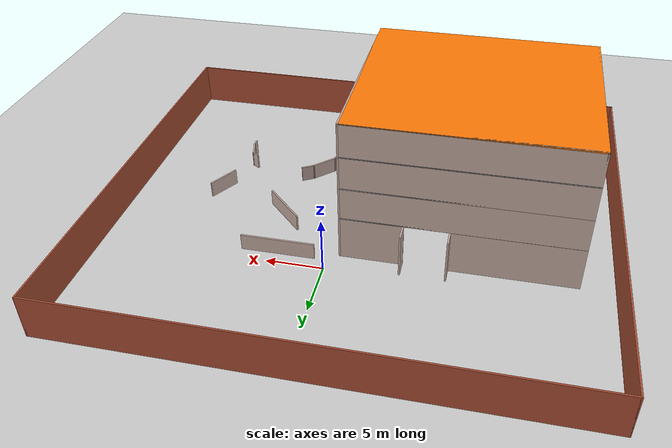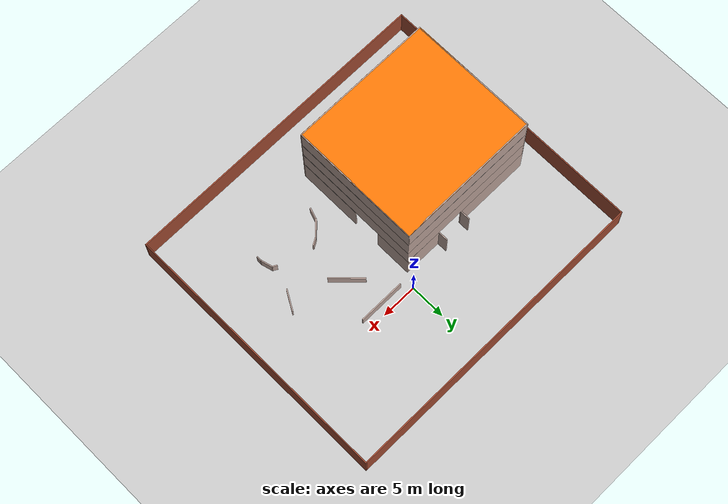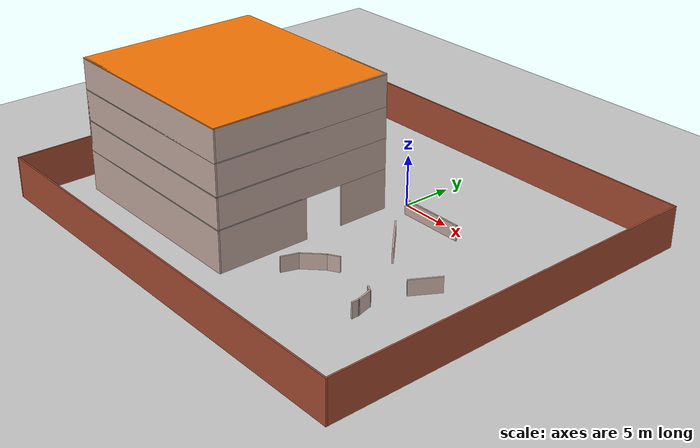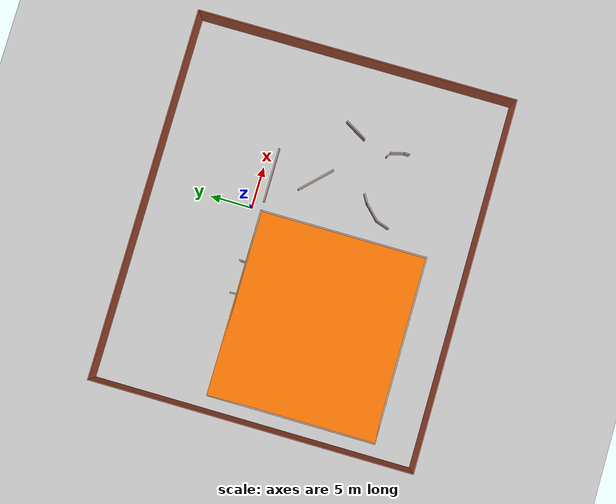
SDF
<sdf version="1.6">
 <world name="default">
  <model name="ground_plane">
   <static>1</static>
   <link name="link">
    <collision name="collision">
     <geometry><plane><normal>0 0 1</normal><size>100 100</size></plane></geometry>
     <surface><friction><ode><mu>100</mu><mu2>50</mu2></ode></friction></surface>
    </collision>
    <visual name="visual">
     <cast_shadows>0</cast_shadows>
     <geometry><plane><normal>0 0 1</normal><size>100 100</size></plane></geometry>
     <material>
      <script><uri>file://media/materials/scripts/gazebo.material</uri><name>Gazebo/Grey</name></script>
     </material>
    </visual>
   </link>
  </model>
  <model name="building2">
   <pose>-11 -10.325 0 0 -0 0</pose>
   <link name="Floor_0">
    <collision name="Floor_0_Collision">
     <geometry><box><size>20.15 18.15 0.1</size></box></geometry>
     <pose>0 0 0.05 0 -0 0</pose>
    </collision>
    <visual name="Floor_0_Visual">
     <pose>0 0 0.05 0 -0 0</pose>
     <geometry><box><size>20.15 18.15 0.1</size></box></geometry>
     <material>
      <script><uri>file://media/materials/scripts/gazebo.material</uri><name>Gazebo/Grey</name></script>
      <ambient>1 1 1 1</ambient>
     </material>
     <meta><layer>1</layer></meta>
    </visual>
    <pose>-0 -0.675 4 0 -0 0</pose>
   </link>
   <link name="Floor_2">
    <collision name="Floor_2_Collision">
     <geometry><box><size>20.15 18.15 0.1</size></box></geometry>
     <pose>0 0 0.05 0 -0 0</pose>
    </collision>
    <visual name="Floor_2_Visual">
     <pose>0 0 0.05 0 -0 0</pose>
     <geometry><box><size>20.15 18.15 0.1</size></box></geometry>
     <material>
      <script><uri>file://media/materials/scripts/gazebo.material</uri><name>Gazebo/Grey</name></script>
      <ambient>1 1 1 1</ambient>
     </material>
     <meta><layer>2</layer></meta>
    </visual>
    <pose>-0 -0.675 7 0 -0 0</pose>
   </link>
   <link name="Floor_3">
    <collision name="Floor_3_Collision">
     <geometry><box><size>20.15 18.15 0.1</size></box></geometry>
     <pose>0 0 0.05 0 -0 0</pose>
    </collision>
    <visual name="Floor_3_Visual">
     <pose>0 0 0.05 0 -0 0</pose>
     <geometry><box><size>20.15 18.15 0.1</size></box></geometry>
     <material>
      <script><uri>file://media/materials/scripts/gazebo.material</uri><name>Gazebo/Grey</name></script>
      <ambient>1 1 1 1</ambient>
     </material>
     <meta><layer>3</layer></meta>
    </visual>
    <pose>-0 -0.675 10 0 -0 0</pose>
   </link>
   <link name="Floor_8">
    <collision name="Floor_8_Collision">
     <geometry><box><size>20.15 18.15 0.1</size></box></geometry>
     <pose>0 0 0.05 0 -0 0</pose>
    </collision>
    <visual name="Floor_8_Visual">
     <pose>0 0 0.05 0 -0 0</pose>
     <geometry><box><size>20.15 18.15 0.1</size></box></geometry>
     <material>
      <script><uri>file://media/materials/scripts/gazebo.material</uri><name>Gazebo/Grey</name></script>
      <ambient>0.996078 0.47451 0.0196078 1</ambient>
     </material>
     <meta><layer>4</layer></meta>
    </visual>
    <pose>-0 -0.675 13 0 -0 0</pose>
   </link>
   <link name="Wall_11">
    <collision name="Wall_11_Collision">
     <geometry><box><size>1.5 0.15 4</size></box></geometry>
     <pose>0 0 2 0 -0 0</pose>
    </collision>
    <visual name="Wall_11_Visual">
     <pose>0 0 2 0 -0 0</pose>
     <geometry><box><size>1.5 0.15 4</size></box></geometry>
     <material>
      <script><uri>file://media/materials/scripts/gazebo.material</uri><name>Gazebo/Grey</name></script>
      <ambient>0.760784 0.662745 0.627451 1</ambient>
     </material>
     <meta><layer>0</layer></meta>
    </visual>
    <pose>0.8 9 0 0 -0 -1.5708</pose>
   </link>
   <link name="Wall_12">
    <collision name="Wall_12_Collision">
     <geometry><box><size>10.95 0.15 4</size></box></geometry>
     <pose>0 0 2 0 -0 0</pose>
    </collision>
    <visual name="Wall_12_Visual">
     <pose>0 0 2 0 -0 0</pose>
     <geometry><box><size>10.95 0.15 4</size></box></geometry>
     <material>
      <script><uri>file://media/materials/scripts/gazebo.material</uri><name>Gazebo/Grey</name></script>
      <ambient>0.760784 0.662745 0.627451 1</ambient>
     </material>
     <meta><layer>0</layer></meta>
    </visual>
    <pose>-4.6 8.325 0 0 -0 3.14159</pose>
   </link>
   <link name="Wall_14">
    <collision name="Wall_14_Collision">
     <geometry><box><size>18.15 0.15 4</size></box></geometry>
     <pose>0 0 2 0 -0 0</pose>
    </collision>
    <visual name="Wall_14_Visual">
     <pose>0 0 2 0 -0 0</pose>
     <geometry><box><size>18.15 0.15 4</size></box></geometry>
     <material>
      <script><uri>file://media/materials/scripts/gazebo.material</uri><name>Gazebo/Grey</name></script>
      <ambient>0.760784 0.662745 0.627451 1</ambient>
     </material>
     <meta><layer>0</layer></meta>
    </visual>
    <pose>-10 -0.675 0 0 -0 -1.5708</pose>
   </link>
   <link name="Wall_16">
    <collision name="Wall_16_Collision">
     <geometry><box><size>20.15 0.15 4</size></box></geometry>
     <pose>0 0 2 0 -0 0</pose>
    </collision>
    <visual name="Wall_16_Visual">
     <pose>0 0 2 0 -0 0</pose>
     <geometry><box><size>20.15 0.15 4</size></box></geometry>
     <material>
      <script><uri>file://media/materials/scripts/gazebo.material</uri><name>Gazebo/Grey</name></script>
      <ambient>0.760784 0.662745 0.627451 1</ambient>
     </material>
     <meta><layer>0</layer></meta>
    </visual>
    <pose>-0 -9.675 0 0 -0 0</pose>
   </link>
   <link name="Wall_24">
    <collision name="Wall_24_Collision">
     <geometry><box><size>18.15 0.15 3</size></box></geometry>
     <pose>0 0 1.5 0 -0 0</pose>
    </collision>
    <visual name="Wall_24_Visual">
     <pose>0 0 1.5 0 -0 0</pose>
     <geometry><box><size>18.15 0.15 3</size></box></geometry>
     <material>
      <script><uri>file://media/materials/scripts/gazebo.material</uri><name>Gazebo/Grey</name></script>
      <ambient>0.760784 0.662745 0.627451 1</ambient>
     </material>
     <meta><layer>1</layer></meta>
    </visual>
    <pose>-10 -0.675 4 0 -0 -1.5708</pose>
   </link>
   <link name="Wall_25">
    <collision name="Wall_25_Collision">
     <geometry><box><size>20.15 0.15 3</size></box></geometry>
     <pose>0 0 1.5 0 -0 0</pose>
    </collision>
    <visual name="Wall_25_Visual">
     <pose>0 0 1.5 0 -0 0</pose>
     <geometry><box><size>20.15 0.15 3</size></box></geometry>
     <material>
      <script><uri>file://media/materials/scripts/gazebo.material</uri><name>Gazebo/Grey</name></script>
      <ambient>0.760784 0.662745 0.627451 1</ambient>
     </material>
     <meta><layer>1</layer></meta>
    </visual>
    <pose>-0 -9.675 4 0 -0 0</pose>
   </link>
   <link name="Wall_31">
    <collision name="Wall_31_Collision">
     <geometry><box><size>20.15 0.15 3</size></box></geometry>
     <pose>0 0 1.5 0 -0 0</pose>
    </collision>
    <visual name="Wall_31_Visual">
     <pose>0 0 1.5 0 -0 0</pose>
     <geometry><box><size>20.15 0.15 3</size></box></geometry>
     <material>
      <script><uri>file://media/materials/scripts/gazebo.material</uri><name>Gazebo/Grey</name></script>
      <ambient>0.760784 0.662745 0.627451 1</ambient>
     </material>
     <meta><layer>1</layer></meta>
    </visual>
    <pose>-0 8.325 4 0 -0 0</pose>
   </link>
   <link name="Wall_33">
    <collision name="Wall_33_Collision">
     <geometry><box><size>18 0.15 3</size></box></geometry>
     <pose>0 0 1.5 0 -0 0</pose>
    </collision>
    <visual name="Wall_33_Visual">
     <pose>0 0 1.5 0 -0 0</pose>
     <geometry><box><size>18 0.15 3</size></box></geometry>
     <material>
      <script><uri>file://media/materials/scripts/gazebo.material</uri><name>Gazebo/Grey</name></script>
      <ambient>0.760784 0.662745 0.627451 1</ambient>
     </material>
     <meta><layer>1</layer></meta>
    </visual>
    <pose>10 -0.6 4 0 -0 -1.5708</pose>
   </link>
   <link name="Wall_4">
    <collision name="Wall_4_Collision">
     <geometry><box><size>5.15 0.15 4</size></box></geometry>
     <pose>0 0 2 0 -0 0</pose>
    </collision>
    <visual name="Wall_4_Visual">
     <pose>0 0 2 0 -0 0</pose>
     <geometry><box><size>5.15 0.15 4</size></box></geometry>
     <material>
      <script><uri>file://media/materials/scripts/gazebo.material</uri><name>Gazebo/Grey</name></script>
      <ambient>0.760784 0.662745 0.627451 1</ambient>
     </material>
     <meta><layer>0</layer></meta>
    </visual>
    <pose>10 5.825 0 0 -0 -1.5708</pose>
   </link>
   <link name="Wall_42">
    <collision name="Wall_42_Collision">
     <geometry><box><size>18.15 0.15 3</size></box></geometry>
     <pose>0 0 1.5 0 -0 0</pose>
    </collision>
    <visual name="Wall_42_Visual">
     <pose>0 0 1.5 0 -0 0</pose>
     <geometry><box><size>18.15 0.15 3</size></box></geometry>
     <material>
      <script><uri>file://media/materials/scripts/gazebo.material</uri><name>Gazebo/Grey</name></script>
      <ambient>0.760784 0.662745 0.627451 1</ambient>
     </material>
     <meta><layer>2</layer></meta>
    </visual>
    <pose>-10 -0.675 7 0 -0 -1.5708</pose>
   </link>
   <link name="Wall_43">
    <collision name="Wall_43_Collision">
     <geometry><box><size>20.15 0.15 3</size></box></geometry>
     <pose>0 0 1.5 0 -0 0</pose>
    </collision>
    <visual name="Wall_43_Visual">
     <pose>0 0 1.5 0 -0 0</pose>
     <geometry><box><size>20.15 0.15 3</size></box></geometry>
     <material>
      <script><uri>file://media/materials/scripts/gazebo.material</uri><name>Gazebo/Grey</name></script>
      <ambient>0.760784 0.662745 0.627451 1</ambient>
     </material>
     <meta><layer>2</layer></meta>
    </visual>
    <pose>-0 -9.675 7 0 -0 0</pose>
   </link>
   <link name="Wall_44">
    <collision name="Wall_44_Collision">
     <geometry><box><size>20.15 0.15 3</size></box></geometry>
     <pose>0 0 1.5 0 -0 0</pose>
    </collision>
    <visual name="Wall_44_Visual">
     <pose>0 0 1.5 0 -0 0</pose>
     <geometry><box><size>20.15 0.15 3</size></box></geometry>
     <material>
      <script><uri>file://media/materials/scripts/gazebo.material</uri><name>Gazebo/Grey</name></script>
      <ambient>0.760784 0.662745 0.627451 1</ambient>
     </material>
     <meta><layer>2</layer></meta>
    </visual>
    <pose>-0 8.325 7 0 -0 0</pose>
   </link>
   <link name="Wall_45">
    <collision name="Wall_45_Collision">
     <geometry><box><size>18 0.15 3</size></box></geometry>
     <pose>0 0 1.5 0 -0 0</pose>
    </collision>
    <visual name="Wall_45_Visual">
     <pose>0 0 1.5 0 -0 0</pose>
     <geometry><box><size>18 0.15 3</size></box></geometry>
     <material>
      <script><uri>file://media/materials/scripts/gazebo.material</uri><name>Gazebo/Grey</name></script>
      <ambient>0.760784 0.662745 0.627451 1</ambient>
     </material>
     <meta><layer>2</layer></meta>
    </visual>
    <pose>10 -0.6 7 0 -0 -1.5708</pose>
   </link>
   <link name="Wall_46">
    <collision name="Wall_46_Collision">
     <geometry><box><size>18.15 0.15 3</size></box></geometry>
     <pose>0 0 1.5 0 -0 0</pose>
    </collision>
    <visual name="Wall_46_Visual">
     <pose>0 0 1.5 0 -0 0</pose>
     <geometry><box><size>18.15 0.15 3</size></box></geometry>
     <material>
      <script><uri>file://media/materials/scripts/gazebo.material</uri><name>Gazebo/Grey</name></script>
      <ambient>0.760784 0.662745 0.627451 1</ambient>
     </material>
     <meta><layer>3</layer></meta>
    </visual>
    <pose>-10 -0.675 10 0 -0 -1.5708</pose>
   </link>
   <link name="Wall_47">
    <collision name="Wall_47_Collision">
     <geometry><box><size>20.15 0.15 3</size></box></geometry>
     <pose>0 0 1.5 0 -0 0</pose>
    </collision>
    <visual name="Wall_47_Visual">
     <pose>0 0 1.5 0 -0 0</pose>
     <geometry><box><size>20.15 0.15 3</size></box></geometry>
     <material>
      <script><uri>file://media/materials/scripts/gazebo.material</uri><name>Gazebo/Grey</name></script>
      <ambient>0.760784 0.662745 0.627451 1</ambient>
     </material>
     <meta><layer>3</layer></meta>
    </visual>
    <pose>-0 -9.675 10 0 -0 0</pose>
   </link>
   <link name="Wall_48">
    <collision name="Wall_48_Collision">
     <geometry><box><size>20.15 0.15 3</size></box></geometry>
     <pose>0 0 1.5 0 -0 0</pose>
    </collision>
    <visual name="Wall_48_Visual">
     <pose>0 0 1.5 0 -0 0</pose>
     <geometry><box><size>20.15 0.15 3</size></box></geometry>
     <material>
      <script><uri>file://media/materials/scripts/gazebo.material</uri><name>Gazebo/Grey</name></script>
      <ambient>0.760784 0.662745 0.627451 1</ambient>
     </material>
     <meta><layer>3</layer></meta>
    </visual>
    <pose>-0 8.325 10 0 -0 0</pose>
   </link>
   <link name="Wall_49">
    <collision name="Wall_49_Collision">
     <geometry><box><size>18 0.15 3</size></box></geometry>
     <pose>0 0 1.5 0 -0 0</pose>
    </collision>
    <visual name="Wall_49_Visual">
     <pose>0 0 1.5 0 -0 0</pose>
     <geometry><box><size>18 0.15 3</size></box></geometry>
     <material>
      <script><uri>file://media/materials/scripts/gazebo.material</uri><name>Gazebo/Grey</name></script>
      <ambient>0.760784 0.662745 0.627451 1</ambient>
     </material>
     <meta><layer>3</layer></meta>
    </visual>
    <pose>10 -0.6 10 0 -0 -1.5708</pose>
   </link>
   <link name="Wall_6">
    <collision name="Wall_6_Collision">
     <geometry><box><size>9.15 0.15 4</size></box></geometry>
     <pose>0 0 2 0 -0 0</pose>
    </collision>
    <visual name="Wall_6_Visual">
     <pose>0 0 2 0 -0 0</pose>
     <geometry><box><size>9.15 0.15 4</size></box></geometry>
     <material>
      <script><uri>file://media/materials/scripts/gazebo.material</uri><name>Gazebo/Grey</name></script>
      <ambient>0.760784 0.662745 0.627451 1</ambient>
     </material>
     <meta><layer>0</layer></meta>
    </visual>
    <pose>10 -5.175 0 0 -0 -1.5708</pose>
   </link>
   <link name="Wall_76">
    <collision name="Wall_76_Collision">
     <geometry><box><size>18.15 0.15 0.1</size></box></geometry>
     <pose>0 0 0.05 0 -0 0</pose>
    </collision>
    <visual name="Wall_76_Visual">
     <pose>0 0 0.05 0 -0 0</pose>
     <geometry><box><size>18.15 0.15 0.1</size></box></geometry>
     <material>
      <script><uri>file://media/materials/scripts/gazebo.material</uri><name>Gazebo/Grey</name></script>
      <ambient>0.760784 0.662745 0.627451 1</ambient>
     </material>
     <meta><layer>4</layer></meta>
    </visual>
    <pose>-10 -0.675 13 0 -0 -1.5708</pose>
   </link>
   <link name="Wall_77">
    <collision name="Wall_77_Collision">
     <geometry><box><size>20.15 0.15 0.1</size></box></geometry>
     <pose>0 0 0.05 0 -0 0</pose>
    </collision>
    <visual name="Wall_77_Visual">
     <pose>0 0 0.05 0 -0 0</pose>
     <geometry><box><size>20.15 0.15 0.1</size></box></geometry>
     <material>
      <script><uri>file://media/materials/scripts/gazebo.material</uri><name>Gazebo/Grey</name></script>
      <ambient>0.760784 0.662745 0.627451 1</ambient>
     </material>
     <meta><layer>4</layer></meta>
    </visual>
    <pose>-0 -9.675 13 0 -0 0</pose>
   </link>
   <link name="Wall_78">
    <collision name="Wall_78_Collision">
     <geometry><box><size>20.15 0.15 0.1</size></box></geometry>
     <pose>0 0 0.05 0 -0 0</pose>
    </collision>
    <visual name="Wall_78_Visual">
     <pose>0 0 0.05 0 -0 0</pose>
     <geometry><box><size>20.15 0.15 0.1</size></box></geometry>
     <material>
      <script><uri>file://media/materials/scripts/gazebo.material</uri><name>Gazebo/Grey</name></script>
      <ambient>0.760784 0.662745 0.627451 1</ambient>
     </material>
     <meta><layer>4</layer></meta>
    </visual>
    <pose>-0 8.325 13 0 -0 0</pose>
   </link>
   <link name="Wall_79">
    <collision name="Wall_79_Collision">
     <geometry><box><size>18 0.15 0.1</size></box></geometry>
     <pose>0 0 0.05 0 -0 0</pose>
    </collision>
    <visual name="Wall_79_Visual">
     <pose>0 0 0.05 0 -0 0</pose>
     <geometry><box><size>18 0.15 0.1</size></box></geometry>
     <material>
      <script><uri>file://media/materials/scripts/gazebo.material</uri><name>Gazebo/Grey</name></script>
      <ambient>0.760784 0.662745 0.627451 1</ambient>
     </material>
     <meta><layer>4</layer></meta>
    </visual>
    <pose>10 -0.6 13 0 -0 -1.5708</pose>
   </link>
   <link name="Wall_8">
    <collision name="Wall_8_Collision">
     <geometry><box><size>5.5 0.15 4</size></box></geometry>
     <pose>0 0 2 0 -0 0</pose>
    </collision>
    <visual name="Wall_8_Visual">
     <pose>0 0 2 0 -0 0</pose>
     <geometry><box><size>5.5 0.15 4</size></box></geometry>
     <material>
      <script><uri>file://media/materials/scripts/gazebo.material</uri><name>Gazebo/Grey</name></script>
      <ambient>0.760784 0.662745 0.627451 1</ambient>
     </material>
     <meta><layer>0</layer></meta>
    </visual>
    <pose>7.325 8.325 0 0 -0 3.14159</pose>
   </link>
   <link name="Wall_9">
    <collision name="Wall_9_Collision">
     <geometry><box><size>1.5 0.15 4</size></box></geometry>
     <pose>0 0 2 0 -0 0</pose>
    </collision>
    <visual name="Wall_9_Visual">
     <pose>0 0 2 0 -0 0</pose>
     <geometry><box><size>1.5 0.15 4</size></box></geometry>
     <material>
      <script><uri>file://media/materials/scripts/gazebo.material</uri><name>Gazebo/Grey</name></script>
      <ambient>0.760784 0.662745 0.627451 1</ambient>
     </material>
     <meta><layer>0</layer></meta>
    </visual>
    <pose>4.65 9 0 0 -0 1.5708</pose>
   </link>
   <static>1</static>
  </model>
  <model name="wall11">
   <pose>-2 -7 0 0 -0 0</pose>
   <link name="Wall_0">
    <collision name="Wall_0_Collision">
     <geometry><box><size>44.15 0.15 4</size></box></geometry>
     <pose>0 0 2 0 -0 0</pose>
    </collision>
    <visual name="Wall_0_Visual">
     <pose>0 0 2 0 -0 0</pose>
     <geometry><box><size>44.15 0.15 4</size></box></geometry>
     <material>
      <script><uri>file://media/materials/scripts/gazebo.material</uri><name>Gazebo/Bricks</name></script>
      <ambient>1 1 1 1</ambient>
     </material>
     <meta><layer>0</layer></meta>
    </visual>
    <pose>0 19 0 0 -0 0</pose>
   </link>
   <link name="Wall_2">
    <collision name="Wall_2_Collision">
     <geometry><box><size>38.15 0.15 4</size></box></geometry>
     <pose>0 0 2 0 -0 0</pose>
    </collision>
    <visual name="Wall_2_Visual">
     <pose>0 0 2 0 -0 0</pose>
     <geometry><box><size>38.15 0.15 4</size></box></geometry>
     <material>
      <script><uri>file://media/materials/scripts/gazebo.material</uri><name>Gazebo/Bricks</name></script>
      <ambient>1 1 1 1</ambient>
     </material>
     <meta><layer>0</layer></meta>
    </visual>
    <pose>22 0 0 0 -0 -1.5708</pose>
   </link>
   <link name="Wall_4">
    <collision name="Wall_4_Collision">
     <geometry><box><size>44.15 0.15 4</size></box></geometry>
     <pose>0 0 2 0 -0 0</pose>
    </collision>
    <visual name="Wall_4_Visual">
     <pose>0 0 2 0 -0 0</pose>
     <geometry><box><size>44.15 0.15 4</size></box></geometry>
     <material>
      <script><uri>file://media/materials/scripts/gazebo.material</uri><name>Gazebo/Bricks</name></script>
      <ambient>1 1 1 1</ambient>
     </material>
     <meta><layer>0</layer></meta>
    </visual>
    <pose>0 -19 0 0 -0 3.14159</pose>
   </link>
   <link name="Wall_6">
    <collision name="Wall_6_Collision">
     <geometry><box><size>38.15 0.15 4</size></box></geometry>
     <pose>0 0 2 0 -0 0</pose>
    </collision>
    <visual name="Wall_6_Visual">
     <pose>0 0 2 0 -0 0</pose>
     <geometry><box><size>38.15 0.15 4</size></box></geometry>
     <material>
      <script><uri>file://media/materials/scripts/gazebo.material</uri><name>Gazebo/Bricks</name></script>
      <ambient>1 1 1 1</ambient>
     </material>
     <meta><layer>0</layer></meta>
    </visual>
    <pose>-22 0 0 0 -0 1.5708</pose>
   </link>
   <static>1</static>
  </model>
  <model name="wall12">
   <pose>6.96274 -8.60893 0 0 -0 0</pose>
   <link name="Wall_0">
    <collision name="Wall_0_Collision">
     <geometry><box><size>1.73114 0.15 1.5</size></box></geometry>
     <pose>0 0 0.75 0 -0 0</pose>
    </collision>
    <visual name="Wall_0_Visual">
     <pose>0 0 0.75 0 -0 0</pose>
     <geometry><box><size>1.73114 0.15 1.5</size></box></geometry>
     <material>
      <script><uri>file://media/materials/scripts/gazebo.material</uri><name>Gazebo/Grey</name></script>
      <ambient>0.760784 0.662745 0.627451 1</ambient>
     </material>
     <meta><layer>0</layer></meta>
    </visual>
    <pose>-4.71274 -6.64107 0 0 -0 1.24905</pose>
   </link>
   <link name="Wall_13">
    <collision name="Wall_13_Collision">
     <geometry><box><size>6.5 0.15 1.5</size></box></geometry>
     <pose>0 0 0.75 0 -0 0</pose>
    </collision>
    <visual name="Wall_13_Visual">
     <pose>0 0 0.75 0 -0 0</pose>
     <geometry><box><size>6.5 0.15 1.5</size></box></geometry>
     <material>
      <script><uri>file://media/materials/scripts/gazebo.material</uri><name>Gazebo/Grey</name></script>
      <ambient>0.760784 0.662745 0.627451 1</ambient>
     </material>
     <meta><layer>0</layer></meta>
    </visual>
    <pose>-2.67774 7.41093 0 0 -0 0</pose>
   </link>
   <link name="Wall_15">
    <collision name="Wall_15_Collision">
     <geometry><box><size>4.75 0.15 1.5</size></box></geometry>
     <pose>0 0 0.75 0 -0 0</pose>
    </collision>
    <visual name="Wall_15_Visual">
     <pose>0 0 0.75 0 -0 0</pose>
     <geometry><box><size>4.75 0.15 1.5</size></box></geometry>
     <material>
      <script><uri>file://media/materials/scripts/gazebo.material</uri><name>Gazebo/Grey</name></script>
      <ambient>0.760784 0.662745 0.627451 1</ambient>
     </material>
     <meta><layer>0</layer></meta>
    </visual>
    <pose>-1.78524 2.28593 0 0 -0 -0.785244</pose>
   </link>
   <link name="Wall_2">
    <collision name="Wall_2_Collision">
     <geometry><box><size>2.5 0.15 1.5</size></box></geometry>
     <pose>0 0 0.75 0 -0 0</pose>
    </collision>
    <visual name="Wall_2_Visual">
     <pose>0 0 0.75 0 -0 0</pose>
     <geometry><box><size>2.5 0.15 1.5</size></box></geometry>
     <material>
      <script><uri>file://media/materials/scripts/gazebo.material</uri><name>Gazebo/Grey</name></script>
      <ambient>0.760784 0.662745 0.627451 1</ambient>
     </material>
     <meta><layer>0</layer></meta>
    </visual>
    <pose>-3.63175 -5.06007 0 0 -0 0.785398</pose>
   </link>
   <link name="Wall_3">
    <collision name="Wall_3_Collision">
     <geometry><box><size>1.25 0.15 1.5</size></box></geometry>
     <pose>0 0 0.75 0 -0 0</pose>
    </collision>
    <visual name="Wall_3_Visual">
     <pose>0 0 0.75 0 -0 0</pose>
     <geometry><box><size>1.25 0.15 1.5</size></box></geometry>
     <material>
      <script><uri>file://media/materials/scripts/gazebo.material</uri><name>Gazebo/Grey</name></script>
      <ambient>0.760784 0.662745 0.627451 1</ambient>
     </material>
     <meta><layer>0</layer></meta>
    </visual>
    <pose>-2.32475 -3.95407 0 0 -0 0.523884</pose>
   </link>
   <link name="Wall_5">
    <collision name="Wall_5_Collision">
     <geometry><box><size>0.75 0.15 1.5</size></box></geometry>
     <pose>0 0 0.75 0 -0 0</pose>
    </collision>
    <visual name="Wall_5_Visual">
     <pose>0 0 0.75 0 -0 0</pose>
     <geometry><box><size>0.75 0.15 1.5</size></box></geometry>
     <material>
      <script><uri>file://media/materials/scripts/gazebo.material</uri><name>Gazebo/Grey</name></script>
      <ambient>0.760784 0.662745 0.627451 1</ambient>
     </material>
     <meta><layer>0</layer></meta>
    </visual>
    <pose>4.07425 -7.09807 0 0 -0 1.5708</pose>
   </link>
   <link name="Wall_6">
    <collision name="Wall_6_Collision">
     <geometry><box><size>1.75 0.15 1.5</size></box></geometry>
     <pose>0 0 0.75 0 -0 0</pose>
    </collision>
    <visual name="Wall_6_Visual">
     <pose>0 0 0.75 0 -0 0</pose>
     <geometry><box><size>1.75 0.15 1.5</size></box></geometry>
     <material>
      <script><uri>file://media/materials/scripts/gazebo.material</uri><name>Gazebo/Grey</name></script>
      <ambient>0.760784 0.662745 0.627451 1</ambient>
     </material>
     <meta><layer>0</layer></meta>
    </visual>
    <pose>3.86726 -6.02557 0 0 -0 1.83261</pose>
   </link>
   <link name="Wall_7">
    <collision name="Wall_7_Collision">
     <geometry><box><size>0.75 0.15 1.5</size></box></geometry>
     <pose>0 0 0.75 0 -0 0</pose>
    </collision>
    <visual name="Wall_7_Visual">
     <pose>0 0 0.75 0 -0 0</pose>
     <geometry><box><size>0.75 0.15 1.5</size></box></geometry>
     <material>
      <script><uri>file://media/materials/scripts/gazebo.material</uri><name>Gazebo/Grey</name></script>
      <ambient>0.760784 0.662745 0.627451 1</ambient>
     </material>
     <meta><layer>0</layer></meta>
    </visual>
    <pose>3.40026 -5.10307 0 0 -0 2.61831</pose>
   </link>
   <link name="Wall_9">
    <collision name="Wall_9_Collision">
     <geometry><box><size>3 0.15 1.5</size></box></geometry>
     <pose>0 0 0.75 0 -0 0</pose>
    </collision>
    <visual name="Wall_9_Visual">
     <pose>0 0 0.75 0 -0 0</pose>
     <geometry><box><size>3 0.15 1.5</size></box></geometry>
     <material>
      <script><uri>file://media/materials/scripts/gazebo.material</uri><name>Gazebo/Grey</name></script>
      <ambient>0.760784 0.662745 0.627451 1</ambient>
     </material>
     <meta><layer>0</layer></meta>
    </visual>
    <pose>5.11275 -0.631066 0 0 -0 1.04717</pose>
   </link>
   <static>1</static>
  </model>
 </world>
</sdf>
